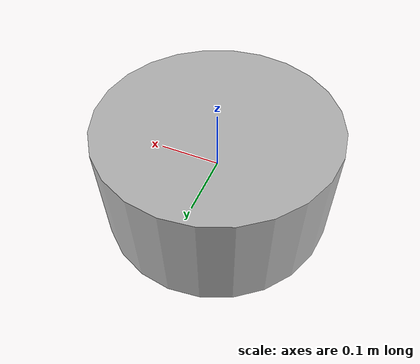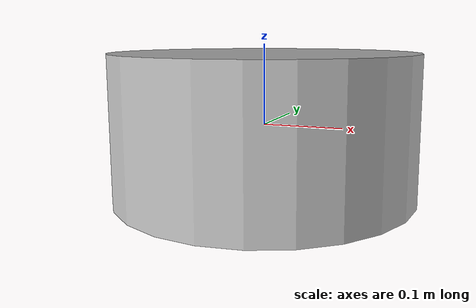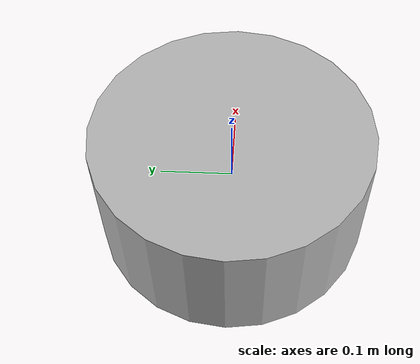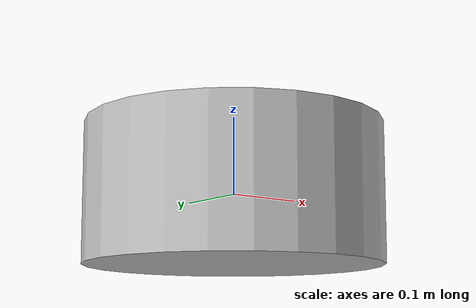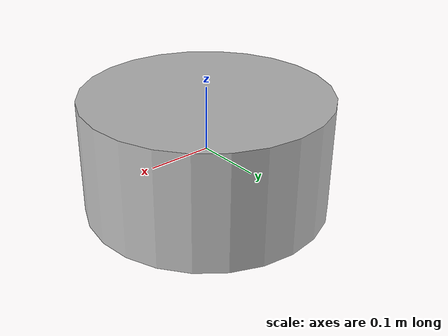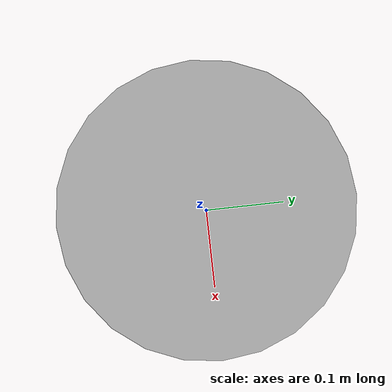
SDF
<?xml version="1.0"?>
<sdf version="1.6">
  <model name="reo2016/sink">
    <link name="1_link">
      <collision name="1_col">
        <geometry>
          <cylinder>
            <length>0.18</length>
            <radius>0.19</radius>
          </cylinder>
        </geometry>
      </collision>
      <visual name="1_vis">
        <geometry>
          <cylinder>
            <length>0.18</length>
            <radius>0.19</radius>
          </cylinder>
        </geometry>
      </visual>
      <pose>0 0 0 0 0 0</pose>
    </link>
    <link name="in_front_of">
      <virtual_volume name="in_front_of_vv">
        <geometry>
          <box>
            <size>0.6 1.0 0.01</size>
          </box>
        </geometry>
        <pose>-1.1 0.0 -0.865 0 0 0</pose>
      </virtual_volume>
    </link>
    <static>true</static>
  </model>
</sdf>
